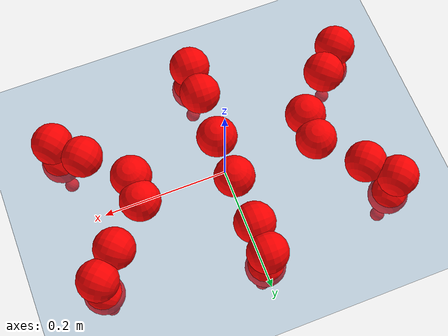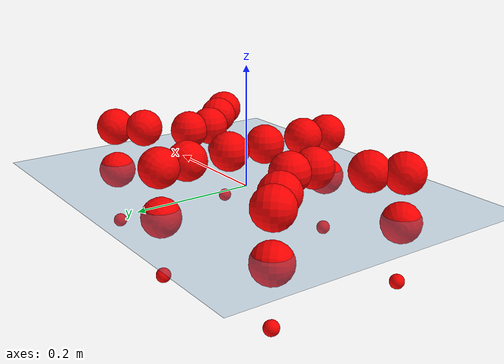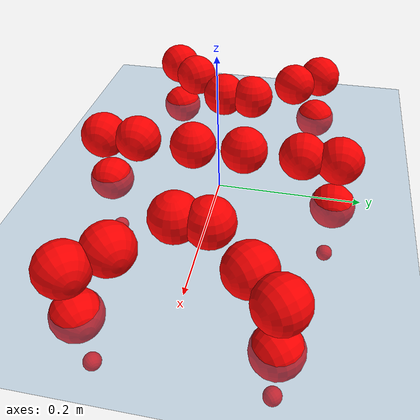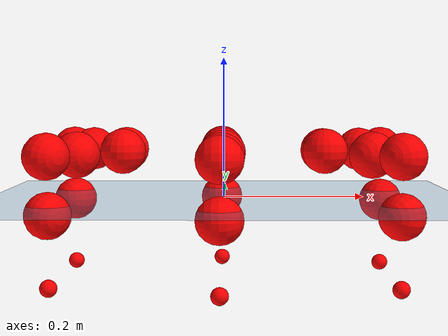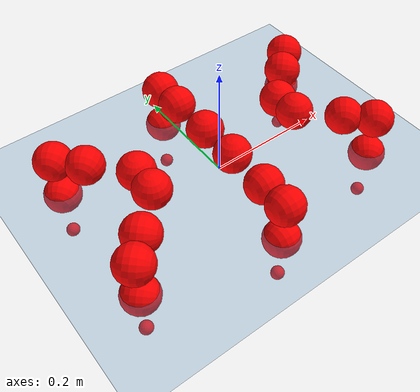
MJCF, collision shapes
<mujoco model="Golem">
  <compiler angle="radian" assetdir="assets" balanceinertia="true" inertiafromgeom="false"/>

  <option timestep="0.005" density="1.2" viscosity="2e-05"/>

  <size nkey="1"/>

  <visual>
    <quality shadowsize="8192"/>
    <map shadowclip="0.5"/>
  </visual>

  <default>
    <default class="/">
      <joint armature="0.01" damping="0.01" frictionloss="0.01"/>
      <geom contype="0" conaffinity="0" group="1" solref="-1000 -80"/>
      <site size="0.01 0.005 0.005" group="5"/>
      <general forcelimited="true" biastype="affine" gainprm="25" biasprm="0 -25 -0.5"/>
      <default class="visual">
        <geom type="mesh" group="2"/>
      </default>
      <default class="collision">
        <geom group="3"/>
      </default>
      <default class="foot">
        <geom size="0.01 0 0" condim="6" group="4" priority="1" solimp="0.015 1 0.01"/>
      </default>
      <default class="reward_collision_sphere">
        <geom group="5" rgba="1 0 0 1"/>
      </default>
    </default>
  </default>

  <asset>
    <texture type="skybox" colorspace="auto" name="//unnamed_texture_0" builtin="gradient" rgb1="0.95 0.95 0.95" rgb2="0.95 0.95 0.95" width="100" height="600"/>
    <texture type="2d" colorspace="auto" name="texplane" builtin="checker" rgb1="0.345 0.575 0.748" rgb2="0.345 0.575 0.748" markrgb="1 1 1" width="512" height="512"/>
    <material name="MatPlane" class="/" texture="texplane" texuniform="true" texrepeat="2 2" specular="0.9"/>
    <mesh name="body" class="/" file="body.stl" scale="0.001 0.001 0.001"/>
    <mesh name="coxa" class="/" file="coxa.stl" scale="0.001 0.001 0.001"/>
    <mesh name="femur" class="/" file="femur.stl" scale="0.001 0.001 0.001"/>
    <mesh name="tibia" class="/" file="tibia.stl" scale="0.001 0.001 0.001"/>
    <mesh name="tarsus" class="/" file="tarsus.stl" scale="0.001 0.001 0.001"/>
  </asset>

  <worldbody>
    <geom name="floor" class="/" size="100 100 0.125" type="plane" group="0" material="MatPlane"/>
    <light name="toplight_shadow" class="/" pos="0 0 5" dir="0.0990148 0.0990148 -0.990148" type="directional" ambient="0.04 0.04 0.04" diffuse="0.55 0.55 0.55" specular="0.12 0.12 0.12"/>
    <light name="toplight_fill" class="/" pos="0 0 5" dir="0.0990148 0.0990148 -0.990148" type="directional" castshadow="false" ambient="0.04 0.04 0.04" diffuse="0.3 0.3 0.3" specular="0.08 0.08 0.08"/>
    <body name="trunk" pos="-0.00014819 0.000147654 0.000359747" quat="1 -5.88342e-05 -0.000248344 -0.00033237">
      <inertial pos="0.000376416 -0.000740546 -0.00350134" quat="1 0.000392602 -0.000141256 5.70381e-05" mass="1.92803" diaginertia="0.00634949 0.000251909 0.0110641"/>
      <joint name="//unnamed_joint_0" type="free"/>
      <geom name="//unnamed_geom_1" class="/" pos="0 0 0.065287" quat="1 0 0 0" type="mesh" rgba="0.9 0.9 0.9 1" mesh="body"/>
      <site name="imu" class="/" pos="0.121251 0.00441898 0.10295" size="0.00803631"/>
      <camera name="track" class="/" pos="0 -0.956487 0" quat="0.707107 0.707107 0 0" mode="trackcom"/>
      <camera name="ego_camera" class="/" pos="0.11863 0 0.102011" quat="-0.5 -0.5 0.5 0.5"/>
      <body name="coxa_RR" pos="-0.162537 -0.0406222 0.0664476" quat="0.382799 0.000351879 0.000315565 -0.923832">
        <inertial pos="-0.000168377 7.73583e-05 0.000315638" quat="0.999992 0.00312449 0.000906852 -0.00252672" mass="0.102699" diaginertia="0.00630857 0.000249171 0.0110177"/>
        <joint name="coxa_joint_RR" class="/" pos="0 0 0" axis="0.000659471 0.00206198 -0.999998" range="-3.12881 3.13258" armature="0.00802437" damping="0.00756323" frictionloss="0.00768232"/>
        <geom name="//unnamed_geom_2" class="/" type="mesh" rgba="0.2 0.2 0.2 1" mesh="coxa"/>
        <geom name="//unnamed_geom_3" class="reward_collision_sphere" size="0.0321452" pos="-0.0273762 0 0"/>
        <body name="femur_RR" pos="0.0549246 0.00158444 -0.00136577" quat="0.49999 -0.500005 0.499985 0.50002">
          <inertial pos="0.000256338 -0.000169525 -0.000512885" quat="0.999999 -0.000150199 0.00071074 -0.000844268" mass="0.103244" diaginertia="0.00625778 0.000247109 0.0110315"/>
          <joint name="femur_joint_RR" class="/" pos="0 0 0" axis="-0.00279573 -0.000659603 -0.999996" stiffness="0.000356267" range="-3.13503 3.1343" armature="0.00809393" damping="0.00140169" frictionloss="0.00803674"/>
          <geom name="//unnamed_geom_4" class="/" type="mesh" rgba="0.9 0.9 0.9 1" mesh="femur"/>
          <geom name="//unnamed_geom_5" class="reward_collision_sphere" size="0.0321452"/>
          <body name="tibia_RR" pos="3.45808e-05 -0.0518318 0.00149624" quat="0.000338955 1 -0.000136505 0.000191906">
            <inertial pos="-0.000436512 -0.00050062 -0.00033348" quat="1 0.000672114 -0.000279979 -0.000507527" mass="0.103282" diaginertia="0.00633161 0.000250401 0.0110658"/>
            <joint name="tibia_joint_RR" class="/" pos="0 0 0" axis="0.000259965 0.000267221 1" range="-3.13175 3.13337" armature="0.00820437" damping="0" frictionloss="0.00786271"/>
            <geom name="//unnamed_geom_6" class="/" type="mesh" rgba="0.2 0.2 0.2 1" mesh="tibia"/>
            <geom name="//unnamed_geom_7" class="reward_collision_sphere" size="0.0321452"/>
            <body name="tarsus_RR" pos="0.079391 -0.000675615 -0.00136126" quat="1 1.699e-05 -7.78235e-05 9.75104e-05">
              <inertial pos="0.0551059 0.000576183 0.000495532" quat="0.499912 0.500342 0.49961 0.500136" mass="0.102509" diaginertia="0.00620505 0.000250063 0.0108047"/>
              <joint name="tarsus_joint_RR" class="/" pos="0 0 0" axis="-0.00379816 -0.00193165 0.999991" range="-3.12347 3.13057" armature="0.00793362" damping="0.00381595" frictionloss="0.00823156"/>
              <geom name="//unnamed_geom_8" class="/" type="mesh" rgba="0.9 0.9 0.9 1" mesh="tarsus"/>
              <geom name="foot_1" class="foot" size="0.00779259" pos="0.102204 0 0" quat="0 -0.707107 0 0.707107"/>
              <geom name="//unnamed_geom_10" class="reward_collision_sphere" size="0.0321452"/>
              <geom name="//unnamed_geom_11" class="reward_collision_sphere" size="0.0120545" pos="0.0980979 0 0"/>
              <site name="foot_1" class="foot" pos="0.102204 0 0" quat="0 -0.707107 0 0.707107" size="0.00803631"/>
            </body>
          </body>
        </body>
      </body>
      <body name="coxa_RM" pos="-0.000774768 -0.0633922 0.0654411" quat="0.707061 1.04593e-05 7.54809e-05 -0.707152">
        <inertial pos="-0.000561257 3.66137e-05 7.1726e-05" quat="1 -0.00017929 -0.000835483 -0.000242655" mass="0.103641" diaginertia="0.0062808 0.000250563 0.0110322"/>
        <joint name="coxa_joint_RM" class="/" pos="0 0 0" axis="0.00188674 -0.000646254 -0.999998" range="-3.1356 3.13228" armature="0.00827495" damping="0.0113873" frictionloss="0.00831657"/>
        <geom name="//unnamed_geom_12" class="/" type="mesh" rgba="0.2 0.2 0.2 1" mesh="coxa"/>
        <geom name="//unnamed_geom_13" class="reward_collision_sphere" size="0.0321452" pos="-0.0273762 0 0"/>
        <body name="femur_RM" pos="0.0523705 -0.00150371 -0.000442384" quat="0.500227 -0.499881 0.499911 0.499982">
          <inertial pos="-0.000814412 0.00022422 -8.2186e-05" quat="0.999998 -0.000561836 -0.0015531 0.000832479" mass="0.102159" diaginertia="0.00623963 0.000250149 0.0110501"/>
          <joint name="femur_joint_RM" class="/" pos="0 0 0" axis="-0.000709075 0.000128206 -1" stiffness="9.25675e-05" range="-3.12268 3.14287" armature="0.00813871" damping="0.00136926" frictionloss="0.00772062"/>
          <geom name="//unnamed_geom_14" class="/" type="mesh" rgba="0.9 0.9 0.9 1" mesh="femur"/>
          <geom name="//unnamed_geom_15" class="reward_collision_sphere" size="0.0321452"/>
          <body name="tibia_RM" pos="0.00105475 -0.0506578 -0.00114307" quat="-8.45398e-05 1 -0.000168962 -8.1537e-06">
            <inertial pos="-0.000322714 -0.000144235 9.84705e-05" quat="1 -4.63369e-05 -0.000398999 0.000784247" mass="0.104059" diaginertia="0.00633212 0.00024892 0.0109953"/>
            <joint name="tibia_joint_RM" class="/" pos="0 0 0" axis="0.000421265 0.000627514 1" range="-3.12956 3.15015" armature="0.00807726" damping="0.00347922" frictionloss="0.00830991"/>
            <geom name="//unnamed_geom_16" class="/" type="mesh" rgba="0.2 0.2 0.2 1" mesh="tibia"/>
            <geom name="//unnamed_geom_17" class="reward_collision_sphere" size="0.0321452"/>
            <body name="tarsus_RM" pos="0.0789958 0.000350991 0.000309619" quat="1 6.38366e-05 7.25621e-05 -6.93293e-06">
              <inertial pos="0.0540141 -6.5403e-05 0.000424264" quat="0.501472 0.500339 0.501428 0.496747" mass="0.104373" diaginertia="0.00626262 0.000248201 0.0111542"/>
              <joint name="tarsus_joint_RM" class="/" pos="0 0 0" axis="0.000598389 0.000131795 1" range="-3.13102 3.12163" armature="0.00832372" damping="0.00324953" frictionloss="0.00791405"/>
              <geom name="//unnamed_geom_18" class="/" type="mesh" rgba="0.9 0.9 0.9 1" mesh="tarsus"/>
              <geom name="foot_2" class="foot" size="0.00814769" pos="0.102204 0 0" quat="0 -0.707107 0 0.707107"/>
              <geom name="//unnamed_geom_20" class="reward_collision_sphere" size="0.0321452"/>
              <geom name="//unnamed_geom_21" class="reward_collision_sphere" size="0.0120545" pos="0.0980979 0 0"/>
              <site name="foot_2" class="foot" pos="0.102204 0 0" quat="0 -0.707107 0 0.707107" size="0.00803631"/>
            </body>
          </body>
        </body>
      </body>
      <body name="coxa_RF" pos="0.163485 -0.0406498 0.0665492" quat="0.923812 -9.00627e-05 0.000154761 -0.382846">
        <inertial pos="0.000865454 -0.00125268 -0.000639883" quat="0.999994 -0.00201983 0.00179276 0.00221044" mass="0.103607" diaginertia="0.00626404 0.000251405 0.0110304"/>
        <joint name="coxa_joint_RF" class="/" pos="0 0 0" axis="0.000345738 -0.00383592 -0.999993" range="-3.12614 3.14321" armature="0.00838525" damping="0.00557889" frictionloss="0.0079358"/>
        <geom name="//unnamed_geom_22" class="/" type="mesh" rgba="0.2 0.2 0.2 1" mesh="coxa"/>
        <geom name="//unnamed_geom_23" class="reward_collision_sphere" size="0.0321452" pos="-0.0273762 0 0"/>
        <body name="femur_RF" pos="0.0557319 0.00148918 -0.00204061" quat="0.49997 -0.499983 0.500053 0.499994">
          <inertial pos="-0.000158408 0.000362 0.000289684" quat="0.999998 -6.45367e-05 0.00191494 -0.000503679" mass="0.1031" diaginertia="0.00637931 0.000248168 0.0109554"/>
          <joint name="femur_joint_RF" class="/" pos="0 0 0" axis="6.59793e-05 0.000609147 -1" range="-3.1535 3.13723" armature="0.00823494" damping="0.000161931" frictionloss="0.00797217"/>
          <geom name="//unnamed_geom_24" class="/" type="mesh" rgba="0.9 0.9 0.9 1" mesh="femur"/>
          <geom name="//unnamed_geom_25" class="reward_collision_sphere" size="0.0321452"/>
          <body name="tibia_RF" pos="-9.94678e-05 -0.0519202 -0.000437857" quat="-0.000231357 1 -3.61303e-05 -7.07842e-05">
            <inertial pos="0.000452201 -0.000714857 0.000331777" quat="0.999992 0.000622699 0.00168246 0.00349751" mass="0.102951" diaginertia="0.00627119 0.000249481 0.0109651"/>
            <joint name="tibia_joint_RF" class="/" pos="0 0 0" axis="0.000329161 -0.00172781 0.999998" range="-3.1477 3.13369" armature="0.00807385" damping="0.00947144" frictionloss="0.00805401"/>
            <geom name="//unnamed_geom_26" class="/" type="mesh" rgba="0.2 0.2 0.2 1" mesh="tibia"/>
            <geom name="//unnamed_geom_27" class="reward_collision_sphere" size="0.0321452"/>
            <body name="tarsus_RF" pos="0.0806523 -0.000528163 0.000654262" quat="1 2.19576e-05 0.000109509 3.68364e-05">
              <inertial pos="0.0544719 0.000445033 0.00069846" quat="0.499049 0.498797 0.502657 0.499488" mass="0.10454" diaginertia="0.00631837 0.000247971 0.0109636"/>
              <joint name="tarsus_joint_RF" class="/" pos="0 0 0" axis="0.000261724 0.0045991 0.999989" stiffness="7.78773e-06" range="-3.13046 3.14361" armature="0.00801879" damping="0.00200207" frictionloss="0.00771836"/>
              <geom name="//unnamed_geom_28" class="/" type="mesh" rgba="0.9 0.9 0.9 1" mesh="tarsus"/>
              <geom name="foot_3" class="foot" size="0.00815892" pos="0.102204 0 0" quat="0 -0.707107 0 0.707107"/>
              <geom name="//unnamed_geom_30" class="reward_collision_sphere" size="0.0321452"/>
              <geom name="//unnamed_geom_31" class="reward_collision_sphere" size="0.0120545" pos="0.0980979 0 0"/>
              <site name="foot_3" class="foot" pos="0.102204 0 0" quat="0 -0.707107 0 0.707107" size="0.00803631"/>
            </body>
          </body>
        </body>
      </body>
      <body name="coxa_LR" pos="-0.16154 0.0423609 0.0672816" quat="0.382721 0.000129973 -7.74949e-05 0.923864">
        <inertial pos="0.000391224 -0.000526141 0.00172453" quat="0.999997 0.00165831 0.000557427 0.00195834" mass="0.104233" diaginertia="0.00634321 0.000250586 0.0110659"/>
        <joint name="coxa_joint_LR" class="/" pos="0 0 0" axis="-0.000106484 -0.000317272 -1" range="-3.14833 3.13514" armature="0.00823871" damping="0.0024354" frictionloss="0.00798778"/>
        <geom name="//unnamed_geom_32" class="/" type="mesh" rgba="0.2 0.2 0.2 1" mesh="coxa"/>
        <geom name="//unnamed_geom_33" class="reward_collision_sphere" size="0.0321452" pos="-0.0273762 0 0"/>
        <body name="femur_LR" pos="0.0556849 -0.00357812 -0.00233891" quat="0.499833 -0.500145 0.500059 0.499964">
          <inertial pos="-0.000235764 -0.000483258 -0.000541703" quat="1 -0.000350143 0.000237538 -0.000208647" mass="0.103371" diaginertia="0.00633864 0.000250533 0.0109565"/>
          <joint name="femur_joint_LR" class="/" pos="0 0 0" axis="0.000134395 0.000865935 1" range="-3.15447 3.15649" armature="0.00809434" damping="0.00539166" frictionloss="0.00831498"/>
          <geom name="//unnamed_geom_34" class="/" type="mesh" rgba="0.9 0.9 0.9 1" mesh="femur"/>
          <geom name="//unnamed_geom_35" class="reward_collision_sphere" size="0.0321452"/>
          <body name="tibia_LR" pos="0.000410988 -0.0526703 -0.00182549" quat="0.000119927 1 0.000208855 -1.55282e-05">
            <inertial pos="-0.000498198 0.000734142 -0.000473415" quat="0.999999 -0.00102478 -0.000169681 -0.000612802" mass="0.104272" diaginertia="0.00629328 0.000246436 0.010979"/>
            <joint name="tibia_joint_LR" class="/" pos="0 0 0" axis="0.00054781 -0.00248249 -0.999997" range="-3.13662 3.13961" armature="0.00781651" damping="0.00226706" frictionloss="0.0083776"/>
            <geom name="//unnamed_geom_36" class="/" type="mesh" rgba="0.2 0.2 0.2 1" mesh="tibia"/>
            <geom name="//unnamed_geom_37" class="reward_collision_sphere" size="0.0321452"/>
            <body name="tarsus_LR" pos="0.0799911 -0.000829159 0.000844373" quat="1 6.38641e-05 8.50361e-05 6.47776e-06">
              <inertial pos="0.0552752 0.00108496 -0.000166322" quat="0.500189 0.499291 0.499612 0.500907" mass="0.104338" diaginertia="0.00637127 0.000252983 0.0111031"/>
              <joint name="tarsus_joint_LR" class="/" pos="0 0 0" axis="0.000166312 -0.00027976 -1" range="-3.13328 3.13967" armature="0.00801082" damping="0" frictionloss="0.00818724"/>
              <geom name="//unnamed_geom_38" class="/" type="mesh" rgba="0.9 0.9 0.9 1" mesh="tarsus"/>
              <geom name="foot_4" class="foot" size="0.00798921" pos="0.102204 0 0" quat="0.707107 0 -0.707107 0"/>
              <geom name="//unnamed_geom_40" class="reward_collision_sphere" size="0.0321452"/>
              <geom name="//unnamed_geom_41" class="reward_collision_sphere" size="0.0120545" pos="0.0980979 0 0"/>
              <site name="foot_4" class="foot" pos="0.102204 0 0" quat="0.707107 0 -0.707107 0" size="0.00803631"/>
            </body>
          </body>
        </body>
      </body>
      <body name="coxa_LM" pos="-0.00214492 0.0624924 0.0658381" quat="0.706601 -0.000167832 9.81422e-05 0.707612">
        <inertial pos="0.000681594 -0.000146589 -0.00029076" quat="1 -0.000384486 6.55933e-05 0.000299024" mass="0.105243" diaginertia="0.00645187 0.000252783 0.0110763"/>
        <joint name="coxa_joint_LM" class="/" pos="0 0 0" axis="-0.000425744 0.000666433 -1" stiffness="0.00335526" range="-3.13099 3.12871" armature="0.00835668" damping="0.00321199" frictionloss="0.00784412"/>
        <geom name="//unnamed_geom_42" class="/" type="mesh" rgba="0.2 0.2 0.2 1" mesh="coxa"/>
        <geom name="//unnamed_geom_43" class="reward_collision_sphere" size="0.0321452" pos="-0.0273762 0 0"/>
        <body name="femur_LM" pos="0.0516697 0.00148894 -0.000423506" quat="0.500001 -0.500052 0.500004 0.499942">
          <inertial pos="-0.00014394 0.000843054 9.70763e-05" quat="0.99999 0.000209991 0.00266888 0.00350682" mass="0.103953" diaginertia="0.00627818 0.000247971 0.0109335"/>
          <joint name="femur_joint_LM" class="/" pos="0 0 0" axis="2.93763e-06 -0.000160434 1" range="-3.13231 3.14098" armature="0.00836011" damping="0.00150202" frictionloss="0.00769318"/>
          <geom name="//unnamed_geom_44" class="/" type="mesh" rgba="0.9 0.9 0.9 1" mesh="femur"/>
          <geom name="//unnamed_geom_45" class="reward_collision_sphere" size="0.0321452"/>
          <body name="tibia_LM" pos="0.00114336 -0.0495664 0.000655337" quat="-1.77216e-05 1 -7.03152e-05 -0.000152141">
            <inertial pos="-0.000463936 -0.00100443 -4.89778e-05" quat="1 -0.000149713 -5.60594e-05 -0.000115116" mass="0.103795" diaginertia="0.00639332 0.000251472 0.0111062"/>
            <joint name="tibia_joint_LM" class="/" pos="0 0 0" axis="0.000553161 -0.000204289 -1" range="-3.15232 3.13796" armature="0.00795313" damping="0" frictionloss="0.00839001"/>
            <geom name="//unnamed_geom_46" class="/" type="mesh" rgba="0.2 0.2 0.2 1" mesh="tibia"/>
            <geom name="//unnamed_geom_47" class="reward_collision_sphere" size="0.0321452"/>
            <body name="tarsus_LM" pos="0.080264 -0.000362139 -0.000469691" quat="1 7.38725e-05 -0.000133489 -4.65744e-05">
              <inertial pos="0.0557649 -2.28073e-05 -0.000175512" quat="0.49991 0.5004 0.499664 0.500027" mass="0.105504" diaginertia="0.00636047 0.000251584 0.0110565"/>
              <joint name="tarsus_joint_LM" class="/" pos="0 0 0" axis="-0.00208887 -0.00344524 -0.999992" range="-3.13502 3.15204" armature="0.00804843" damping="0.000868809" frictionloss="0.0081895"/>
              <geom name="//unnamed_geom_48" class="/" type="mesh" rgba="0.9 0.9 0.9 1" mesh="tarsus"/>
              <geom name="foot_5" class="foot" size="0.00821397" pos="0.102204 0 0" quat="0.707107 0 -0.707107 0"/>
              <geom name="//unnamed_geom_50" class="reward_collision_sphere" size="0.0321452"/>
              <geom name="//unnamed_geom_51" class="reward_collision_sphere" size="0.0120545" pos="0.0980979 0 0"/>
              <site name="foot_5" class="foot" pos="0.102204 0 0" quat="0.707107 0 -0.707107 0" size="0.00803631"/>
            </body>
          </body>
        </body>
      </body>
      <body name="coxa_LF" pos="0.163196 0.0398258 0.0656001" quat="0.923828 -1.60595e-06 9.64817e-05 0.382809">
        <inertial pos="-0.000263595 0.000843457 0.0002099" quat="0.999998 -0.00138722 0.000743656 -0.000762193" mass="0.104451" diaginertia="0.0063624 0.000252484 0.0111435"/>
        <joint name="coxa_joint_LF" class="/" pos="0 0 0" axis="0.00198389 0.000534553 -0.999998" stiffness="0.00049289" range="-3.12303 3.14447" armature="0.00798521" damping="0.00109571" frictionloss="0.00769987"/>
        <geom name="//unnamed_geom_52" class="/" type="mesh" rgba="0.2 0.2 0.2 1" mesh="coxa"/>
        <geom name="//unnamed_geom_53" class="reward_collision_sphere" size="0.0321452" pos="-0.0273762 0 0"/>
        <body name="femur_LF" pos="0.0550215 -0.00204367 -0.00114021" quat="0.500192 -0.499868 0.499593 0.500347">
          <inertial pos="0.000282894 -0.000330025 -0.000451905" quat="0.999993 -0.00300616 -0.00191195 -0.00129128" mass="0.103494" diaginertia="0.00630968 0.00024901 0.0111402"/>
          <joint name="femur_joint_LF" class="/" pos="0 0 0" axis="-0.000239189 -0.000128849 1" range="-3.14554 3.15268" armature="0.00808798" damping="0" frictionloss="0.00767535"/>
          <geom name="//unnamed_geom_54" class="/" type="mesh" rgba="0.9 0.9 0.9 1" mesh="femur"/>
          <geom name="//unnamed_geom_55" class="reward_collision_sphere" size="0.0321452"/>
          <body name="tibia_LF" pos="0.000258026 -0.052963 -0.000250513" quat="-4.00089e-05 1 2.65369e-05 -2.13832e-05">
            <inertial pos="0.0003991 0.000183436 -0.000287647" quat="0.999992 -0.00189815 0.00298984 0.00199427" mass="0.10279" diaginertia="0.00633069 0.000252965 0.0111743"/>
            <joint name="tibia_joint_LF" class="/" pos="0 0 0" axis="0.000129724 1.65361e-05 -1" range="-3.15211 3.13292" armature="0.00771218" damping="0" frictionloss="0.0083626"/>
            <geom name="//unnamed_geom_56" class="/" type="mesh" rgba="0.2 0.2 0.2 1" mesh="tibia"/>
            <geom name="//unnamed_geom_57" class="reward_collision_sphere" size="0.0321452"/>
            <body name="tarsus_LF" pos="0.0805931 0.000564733 0.000277014" quat="1 -1.53983e-05 -2.95248e-05 7.55161e-05">
              <inertial pos="0.0571695 -1.94438e-05 0.00101101" quat="0.499418 0.500223 0.500304 0.500055" mass="0.103713" diaginertia="0.00636085 0.000251625 0.0111132"/>
              <joint name="tarsus_joint_LF" class="/" pos="0 0 0" axis="0.00137603 0.00142952 -0.999998" stiffness="0.0308203" range="-3.13707 3.11776" armature="0.00800536" damping="0.0226702" frictionloss="0.00815052"/>
              <geom name="//unnamed_geom_58" class="/" type="mesh" rgba="0.9 0.9 0.9 1" mesh="tarsus"/>
              <geom name="foot_6" class="foot" size="0.00794866" pos="0.102204 0 0" quat="0.707107 0 -0.707107 0"/>
              <geom name="//unnamed_geom_60" class="reward_collision_sphere" size="0.0321452"/>
              <geom name="//unnamed_geom_61" class="reward_collision_sphere" size="0.0120545" pos="0.0980979 0 0"/>
              <site name="foot_6" class="foot" pos="0.102204 0 0" quat="0.707107 0 -0.707107 0" size="0.00803631"/>
            </body>
          </body>
        </body>
      </body>
    </body>
  </worldbody>

  <contact>
    <pair class="/" geom1="floor" geom2="foot_1" name="//unnamed_contact_0"/>
    <pair class="/" geom1="floor" geom2="foot_2" name="//unnamed_contact_1"/>
    <pair class="/" geom1="floor" geom2="foot_3" name="//unnamed_contact_2"/>
    <pair class="/" geom1="floor" geom2="foot_4" name="//unnamed_contact_3"/>
    <pair class="/" geom1="floor" geom2="foot_5" name="//unnamed_contact_4"/>
    <pair class="/" geom1="floor" geom2="foot_6" name="//unnamed_contact_5"/>
  </contact>

  <actuator>
    <general name="coxa_joint_RR" class="/" joint="coxa_joint_RR" forcerange="-5.71631 5.71631" gainprm="18.9437" biasprm="0 -18.9437 -0.411121"/>
    <general name="femur_joint_RR" class="/" joint="femur_joint_RR" forcerange="-5.73546 5.73546" gainprm="18.9437" biasprm="0 -18.9437 -0.411121"/>
    <general name="tibia_joint_RR" class="/" joint="tibia_joint_RR" forcerange="-5.78954 5.78954" gainprm="18.9437" biasprm="0 -18.9437 -0.411121"/>
    <general name="tarsus_joint_RR" class="/" joint="tarsus_joint_RR" forcerange="-5.97524 5.97524" gainprm="18.9437" biasprm="0 -18.9437 -0.411121"/>
    <general name="coxa_joint_RM" class="/" joint="coxa_joint_RM" forcerange="-5.7229 5.7229" gainprm="18.9437" biasprm="0 -18.9437 -0.411121"/>
    <general name="femur_joint_RM" class="/" joint="femur_joint_RM" forcerange="-5.80371 5.80371" gainprm="18.9437" biasprm="0 -18.9437 -0.411121"/>
    <general name="tibia_joint_RM" class="/" joint="tibia_joint_RM" forcerange="-6.0158 6.0158" gainprm="18.9437" biasprm="0 -18.9437 -0.411121"/>
    <general name="tarsus_joint_RM" class="/" joint="tarsus_joint_RM" forcerange="-6.01174 6.01174" gainprm="18.9437" biasprm="0 -18.9437 -0.411121"/>
    <general name="coxa_joint_RF" class="/" joint="coxa_joint_RF" forcerange="-5.89449 5.89449" gainprm="18.9437" biasprm="0 -18.9437 -0.411121"/>
    <general name="femur_joint_RF" class="/" joint="femur_joint_RF" forcerange="-5.83594 5.83594" gainprm="18.9437" biasprm="0 -18.9437 -0.411121"/>
    <general name="tibia_joint_RF" class="/" joint="tibia_joint_RF" forcerange="-5.9878 5.9878" gainprm="18.9437" biasprm="0 -18.9437 -0.411121"/>
    <general name="tarsus_joint_RF" class="/" joint="tarsus_joint_RF" forcerange="-5.80061 5.80061" gainprm="18.9437" biasprm="0 -18.9437 -0.411121"/>
    <general name="coxa_joint_LR" class="/" joint="coxa_joint_LR" forcerange="-5.6936 5.6936" gainprm="18.9437" biasprm="0 -18.9437 -0.411121"/>
    <general name="femur_joint_LR" class="/" joint="femur_joint_LR" forcerange="-6.03741 6.03741" gainprm="18.9437" biasprm="0 -18.9437 -0.411121"/>
    <general name="tibia_joint_LR" class="/" joint="tibia_joint_LR" forcerange="-6.00207 6.00207" gainprm="18.9437" biasprm="0 -18.9437 -0.411121"/>
    <general name="tarsus_joint_LR" class="/" joint="tarsus_joint_LR" forcerange="-5.81417 5.81417" gainprm="18.9437" biasprm="0 -18.9437 -0.411121"/>
    <general name="coxa_joint_LM" class="/" joint="coxa_joint_LM" forcerange="-5.86188 5.86188" gainprm="18.9437" biasprm="0 -18.9437 -0.411121"/>
    <general name="femur_joint_LM" class="/" joint="femur_joint_LM" forcerange="-5.86143 5.86143" gainprm="18.9437" biasprm="0 -18.9437 -0.411121"/>
    <general name="tibia_joint_LM" class="/" joint="tibia_joint_LM" forcerange="-5.73144 5.73144" gainprm="18.9437" biasprm="0 -18.9437 -0.411121"/>
    <general name="tarsus_joint_LM" class="/" joint="tarsus_joint_LM" forcerange="-5.88042 5.88042" gainprm="18.9437" biasprm="0 -18.9437 -0.411121"/>
    <general name="coxa_joint_LF" class="/" joint="coxa_joint_LF" forcerange="-5.81012 5.81012" gainprm="18.9437" biasprm="0 -18.9437 -0.411121"/>
    <general name="femur_joint_LF" class="/" joint="femur_joint_LF" forcerange="-5.83682 5.83682" gainprm="18.9437" biasprm="0 -18.9437 -0.411121"/>
    <general name="tibia_joint_LF" class="/" joint="tibia_joint_LF" forcerange="-5.83542 5.83542" gainprm="18.9437" biasprm="0 -18.9437 -0.411121"/>
    <general name="tarsus_joint_LF" class="/" joint="tarsus_joint_LF" forcerange="-5.82391 5.82391" gainprm="18.9437" biasprm="0 -18.9437 -0.411121"/>
  </actuator>

  <sensor>
    <gyro site="imu" name="imu_angular_velocity"/>
    <velocimeter site="imu" name="imu_linear_velocity"/>
    <framelinvel objtype="site" objname="foot_1" name="foot_1_global_linear_velocity"/>
    <framelinvel objtype="site" objname="foot_2" name="foot_2_global_linear_velocity"/>
    <framelinvel objtype="site" objname="foot_3" name="foot_3_global_linear_velocity"/>
    <framelinvel objtype="site" objname="foot_4" name="foot_4_global_linear_velocity"/>
    <framelinvel objtype="site" objname="foot_5" name="foot_5_global_linear_velocity"/>
    <framelinvel objtype="site" objname="foot_6" name="foot_6_global_linear_velocity"/>
  </sensor>

  <keyframe>
    <key name="home" qpos="0 0 0.1457 1 0 0 0 0 0 0 0 0 0 0 0 0 0 0 0 0 0 0 0 0 0 0 0 0 0 0 0"/>
  </keyframe>
</mujoco>
